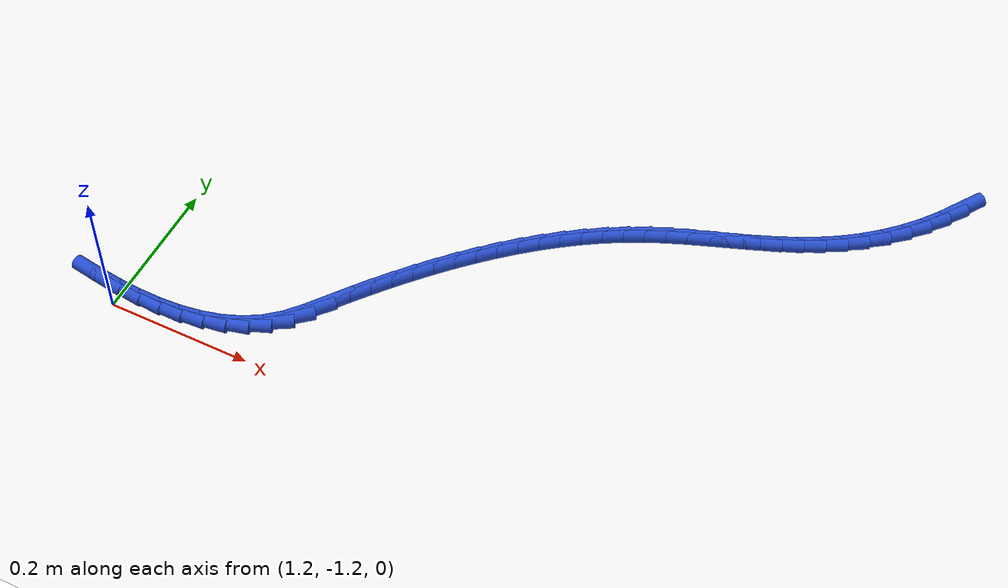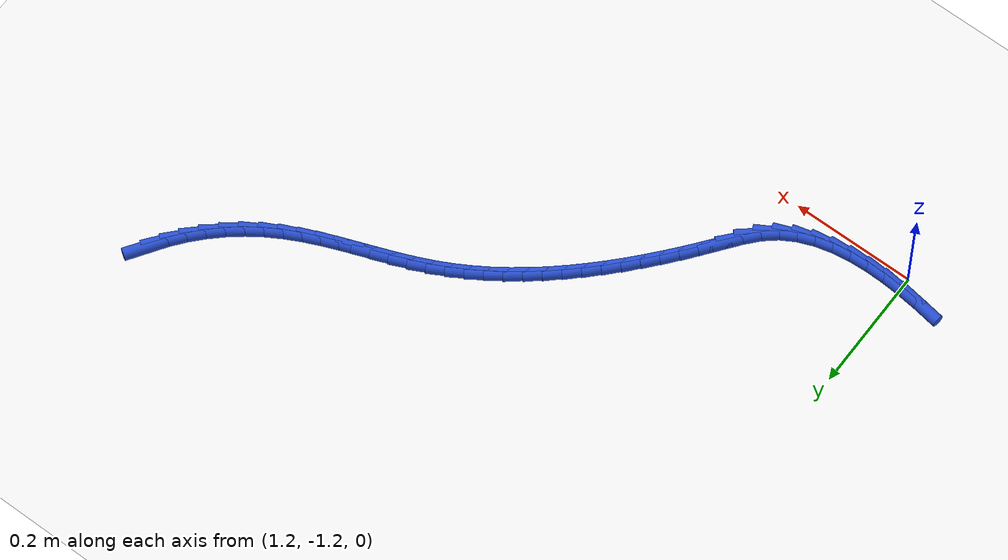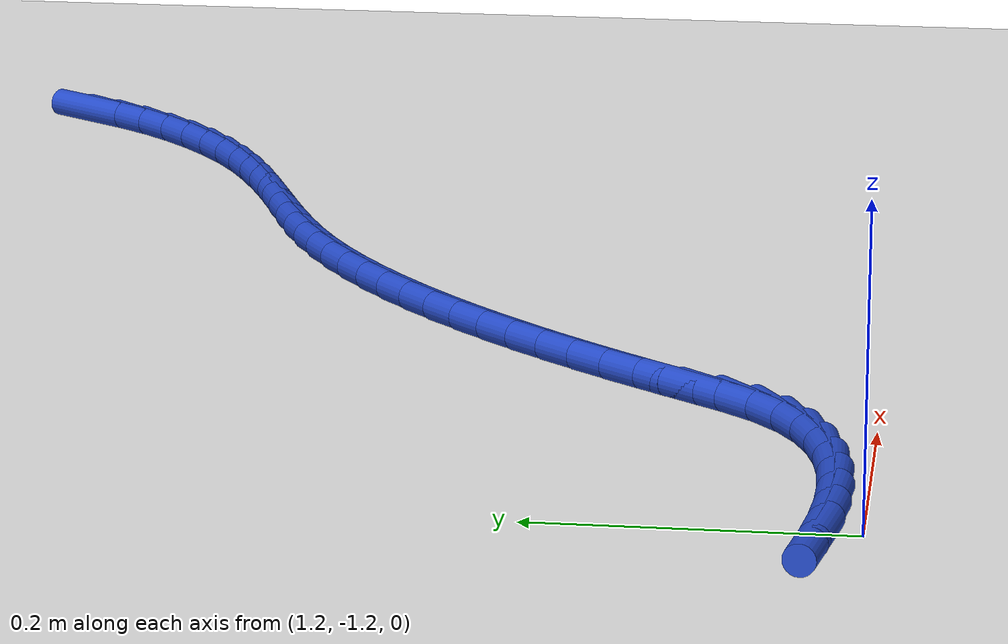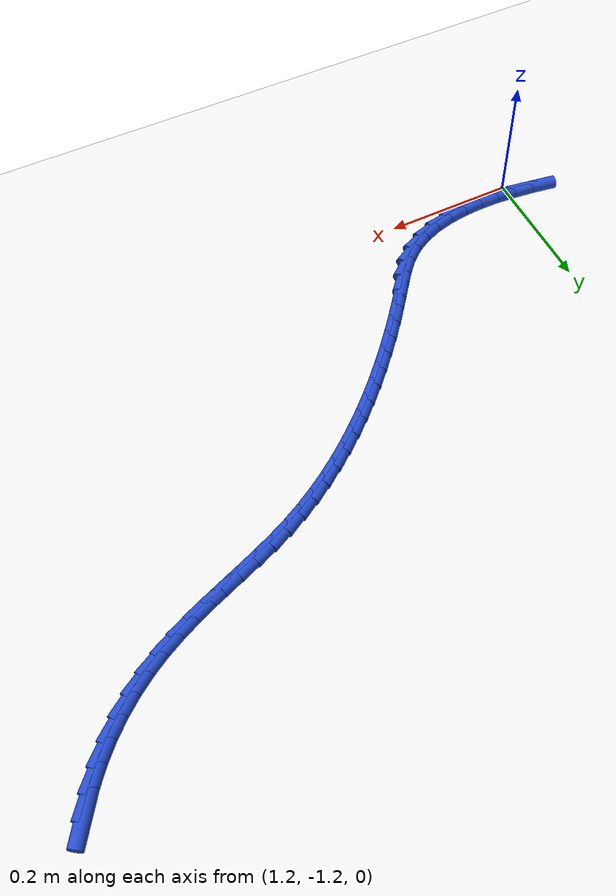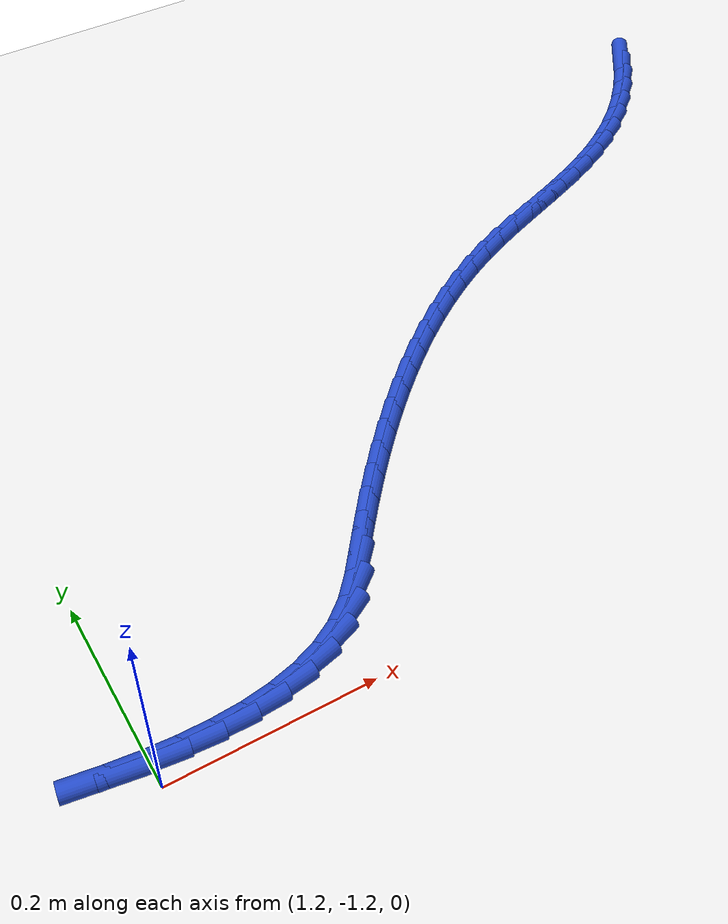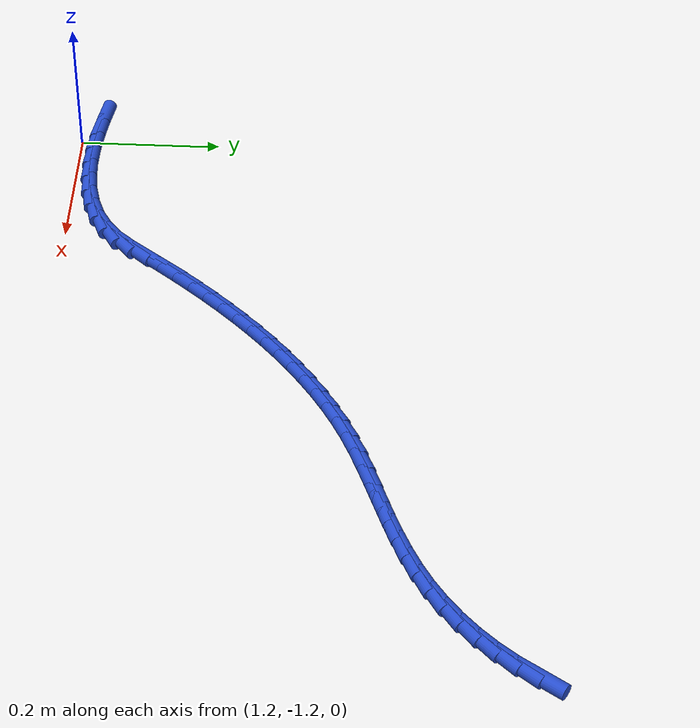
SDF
<sdf version="1.6">
 <world name="default">
  <model name="ground_plane">
   <static>1</static>
   <link name="link">
    <collision name="collision">
     <geometry><plane><normal>0 0 1</normal><size>100 100</size></plane></geometry>
     <surface><friction><ode><mu>100</mu><mu2>50</mu2></ode></friction></surface>
    </collision>
    <visual name="visual">
     <cast_shadows>0</cast_shadows>
     <geometry><plane><normal>0 0 1</normal><size>100 100</size></plane></geometry>
     <material>
      <script><uri>file://media/materials/scripts/gazebo.material</uri><name>Gazebo/WhiteGlow</name></script>
     </material>
    </visual>
   </link>
  </model>
  <model name="line">
   <link name="link_144">
    <pose>2.124508899725825 -0.5680824935011975 0.01 0 1.57 0.9851370315072407</pose>
    <collision name="collision">
     <geometry><cylinder><radius>0.01</radius><length>0.08</length></cylinder></geometry>
    </collision>
    <visual name="visual">
     <material>
      <script><name>Gazebo/Blue</name><uri>file://media/materials/scripts/gazebo.material</uri></script>
     </material>
     <geometry><cylinder><radius>0.01</radius><length>0.08</length></cylinder></geometry>
    </visual>
   </link>
   <link name="link_145">
    <pose>2.108668145786676 -0.5919646894215107 0.01 0 1.57 0.9047653772155894</pose>
    <collision name="collision">
     <geometry><cylinder><radius>0.01</radius><length>0.08</length></cylinder></geometry>
    </collision>
    <visual name="visual">
     <material>
      <script><name>Gazebo/Blue</name><uri>file://media/materials/scripts/gazebo.material</uri></script>
     </material>
     <geometry><cylinder><radius>0.01</radius><length>0.08</length></cylinder></geometry>
    </visual>
   </link>
   <link name="link_146">
    <pose>2.0908029062440012 -0.6146993788718632 0.01 0 1.57 0.8279205633235612</pose>
    <collision name="collision">
     <geometry><cylinder><radius>0.01</radius><length>0.08</length></cylinder></geometry>
    </collision>
    <visual name="visual">
     <material>
      <script><name>Gazebo/Blue</name><uri>file://media/materials/scripts/gazebo.material</uri></script>
     </material>
     <geometry><cylinder><radius>0.01</radius><length>0.08</length></cylinder></geometry>
    </visual>
   </link>
   <link name="link_147">
    <pose>2.0711270530969412 -0.6361239759263299 0.01 0 1.57 0.7533729343449498</pose>
    <collision name="collision">
     <geometry><cylinder><radius>0.01</radius><length>0.08</length></cylinder></geometry>
    </collision>
    <visual name="visual">
     <material>
      <script><name>Gazebo/Blue</name><uri>file://media/materials/scripts/gazebo.material</uri></script>
     </material>
     <geometry><cylinder><radius>0.01</radius><length>0.08</length></cylinder></geometry>
    </visual>
   </link>
   <link name="link_148">
    <pose>2.0498544583446345 -0.6560758946589864 0.01 0 1.57 0.6798947225078926</pose>
    <collision name="collision">
     <geometry><cylinder><radius>0.01</radius><length>0.08</length></cylinder></geometry>
    </collision>
    <visual name="visual">
     <material>
      <script><name>Gazebo/Blue</name><uri>file://media/materials/scripts/gazebo.material</uri></script>
     </material>
     <geometry><cylinder><radius>0.01</radius><length>0.08</length></cylinder></geometry>
    </visual>
   </link>
   <link name="link_149">
    <pose>2.0271989939862216 -0.6743925491439088 0.01 0 1.57 0.6062521403244878</pose>
    <collision name="collision">
     <geometry><cylinder><radius>0.01</radius><length>0.08</length></cylinder></geometry>
    </collision>
    <visual name="visual">
     <material>
      <script><name>Gazebo/Blue</name><uri>file://media/materials/scripts/gazebo.material</uri></script>
     </material>
     <geometry><cylinder><radius>0.01</radius><length>0.08</length></cylinder></geometry>
    </visual>
   </link>
   <link name="link_150">
    <pose>2.003374532020841 -0.6909113534551728 0.01 0 1.57 0.532793385031627</pose>
    <collision name="collision">
     <geometry><cylinder><radius>0.01</radius><length>0.08</length></cylinder></geometry>
    </collision>
    <visual name="visual">
     <material>
      <script><name>Gazebo/Blue</name><uri>file://media/materials/scripts/gazebo.material</uri></script>
     </material>
     <geometry><cylinder><radius>0.01</radius><length>0.08</length></cylinder></geometry>
    </visual>
   </link>
   <link name="link_151">
    <pose>1.9785915926286304 -0.7055252462401531 0.01 0 1.57 0.4689941015839314</pose>
    <collision name="collision">
     <geometry><cylinder><radius>0.01</radius><length>0.08</length></cylinder></geometry>
    </collision>
    <visual name="visual">
     <material>
      <script><name>Gazebo/Blue</name><uri>file://media/materials/scripts/gazebo.material</uri></script>
     </material>
     <geometry><cylinder><radius>0.01</radius><length>0.08</length></cylinder></geometry>
    </visual>
   </link>
   <link name="link_152">
    <pose>1.9530398592361438 -0.7184723374846078 0.01 0 1.57 0.4192963553525784</pose>
    <collision name="collision">
     <geometry><cylinder><radius>0.01</radius><length>0.08</length></cylinder></geometry>
    </collision>
    <visual name="visual">
     <material>
      <script><name>Gazebo/Blue</name><uri>file://media/materials/scripts/gazebo.material</uri></script>
     </material>
     <geometry><cylinder><radius>0.01</radius><length>0.08</length></cylinder></geometry>
    </visual>
   </link>
   <link name="link_153">
    <pose>1.9269010206735355 -0.7301231716981672 0.01 0 1.57 0.3839987366928588</pose>
    <collision name="collision">
     <geometry><cylinder><radius>0.01</radius><length>0.08</length></cylinder></geometry>
    </collision>
    <visual name="visual">
     <material>
      <script><name>Gazebo/Blue</name><uri>file://media/materials/scripts/gazebo.material</uri></script>
     </material>
     <geometry><cylinder><radius>0.01</radius><length>0.08</length></cylinder></geometry>
    </visual>
   </link>
   <link name="link_154">
    <pose>1.9003567493396964 -0.7408485655826355 0.01 0 1.57 0.3631116952908933</pose>
    <collision name="collision">
     <geometry><cylinder><radius>0.01</radius><length>0.08</length></cylinder></geometry>
    </collision>
    <visual name="visual">
     <material>
      <script><name>Gazebo/Blue</name><uri>file://media/materials/scripts/gazebo.material</uri></script>
     </material>
     <geometry><cylinder><radius>0.01</radius><length>0.08</length></cylinder></geometry>
    </visual>
   </link>
   <link name="link_155">
    <pose>1.8735887176335169 -0.7510193358398176 0.01 0 1.57 0.3565834362175257</pose>
    <collision name="collision">
     <geometry><cylinder><radius>0.01</radius><length>0.08</length></cylinder></geometry>
    </collision>
    <visual name="visual">
     <material>
      <script><name>Gazebo/Blue</name><uri>file://media/materials/scripts/gazebo.material</uri></script>
     </material>
     <geometry><cylinder><radius>0.01</radius><length>0.08</length></cylinder></geometry>
    </visual>
   </link>
   <link name="link_156">
    <pose>1.8467785979538878 -0.761006299171518 0.01 0 1.57 0.36442972092847686</pose>
    <collision name="collision">
     <geometry><cylinder><radius>0.01</radius><length>0.08</length></cylinder></geometry>
    </collision>
    <visual name="visual">
     <material>
      <script><name>Gazebo/Blue</name><uri>file://media/materials/scripts/gazebo.material</uri></script>
     </material>
     <geometry><cylinder><radius>0.01</radius><length>0.08</length></cylinder></geometry>
    </visual>
   </link>
   <link name="link_157">
    <pose>1.8201080626996997 -0.7711802722795413 0.01 0 1.57 0.3867750837548463</pose>
    <collision name="collision">
     <geometry><cylinder><radius>0.01</radius><length>0.08</length></cylinder></geometry>
    </collision>
    <visual name="visual">
     <material>
      <script><name>Gazebo/Blue</name><uri>file://media/materials/scripts/gazebo.material</uri></script>
     </material>
     <geometry><cylinder><radius>0.01</radius><length>0.08</length></cylinder></geometry>
    </visual>
   </link>
   <link name="link_158">
    <pose>1.7937587842698428 -0.7819120718656923 0.01 0 1.57 0.42380529924486554</pose>
    <collision name="collision">
     <geometry><cylinder><radius>0.01</radius><length>0.08</length></cylinder></geometry>
    </collision>
    <visual name="visual">
     <material>
      <script><name>Gazebo/Blue</name><uri>file://media/materials/scripts/gazebo.material</uri></script>
     </material>
     <geometry><cylinder><radius>0.01</radius><length>0.08</length></cylinder></geometry>
    </visual>
   </link>
   <link name="link_159">
    <pose>1.7679124335396175 -0.7935725112691795 0.01 0 1.57 0.4724409163797906</pose>
    <collision name="collision">
     <geometry><cylinder><radius>0.01</radius><length>0.08</length></cylinder></geometry>
    </collision>
    <visual name="visual">
     <material>
      <script><name>Gazebo/Blue</name><uri>file://media/materials/scripts/gazebo.material</uri></script>
     </material>
     <geometry><cylinder><radius>0.01</radius><length>0.08</length></cylinder></geometry>
    </visual>
   </link>
   <link name="link_160">
    <pose>1.7427134419149362 -0.8064502155371035 0.01 0 1.57 0.5211316696237953</pose>
    <collision name="collision">
     <geometry><cylinder><radius>0.01</radius><length>0.08</length></cylinder></geometry>
    </collision>
    <visual name="visual">
     <material>
      <script><name>Gazebo/Blue</name><uri>file://media/materials/scripts/gazebo.material</uri></script>
     </material>
     <geometry><cylinder><radius>0.01</radius><length>0.08</length></cylinder></geometry>
    </visual>
   </link>
   <link name="link_161">
    <pose>1.7181723856046178 -0.8205383884815307 0.01 0 1.57 0.5671680925409253</pose>
    <collision name="collision">
     <geometry><cylinder><radius>0.01</radius><length>0.08</length></cylinder></geometry>
    </collision>
    <visual name="visual">
     <material>
      <script><name>Gazebo/Blue</name><uri>file://media/materials/scripts/gazebo.material</uri></script>
     </material>
     <geometry><cylinder><radius>0.01</radius><length>0.08</length></cylinder></geometry>
    </visual>
   </link>
   <link name="link_162">
    <pose>1.6942697768142179 -0.8357638820270551 0.01 0 1.57 0.6104697178454417</pose>
    <collision name="collision">
     <geometry><cylinder><radius>0.01</radius><length>0.08</length></cylinder></geometry>
    </collision>
    <visual name="visual">
     <material>
      <script><name>Gazebo/Blue</name><uri>file://media/materials/scripts/gazebo.material</uri></script>
     </material>
     <geometry><cylinder><radius>0.01</radius><length>0.08</length></cylinder></geometry>
    </visual>
   </link>
   <link name="link_163">
    <pose>1.6709861277492888 -0.8520535480982708 0.01 0 1.57 0.6510072088173618</pose>
    <collision name="collision">
     <geometry><cylinder><radius>0.01</radius><length>0.08</length></cylinder></geometry>
    </collision>
    <visual name="visual">
     <material>
      <script><name>Gazebo/Blue</name><uri>file://media/materials/scripts/gazebo.material</uri></script>
     </material>
     <geometry><cylinder><radius>0.01</radius><length>0.08</length></cylinder></geometry>
    </visual>
   </link>
   <link name="link_164">
    <pose>1.6483019506153862 -0.8693342386197724 0.01 0 1.57 0.6887926547073</pose>
    <collision name="collision">
     <geometry><cylinder><radius>0.01</radius><length>0.08</length></cylinder></geometry>
    </collision>
    <visual name="visual">
     <material>
      <script><name>Gazebo/Blue</name><uri>file://media/materials/scripts/gazebo.material</uri></script>
     </material>
     <geometry><cylinder><radius>0.01</radius><length>0.08</length></cylinder></geometry>
    </visual>
   </link>
   <link name="link_165">
    <pose>1.6261977576180622 -0.8875328055161534 0.01 0 1.57 0.7238699428039904</pose>
    <collision name="collision">
     <geometry><cylinder><radius>0.01</radius><length>0.08</length></cylinder></geometry>
    </collision>
    <visual name="visual">
     <material>
      <script><name>Gazebo/Blue</name><uri>file://media/materials/scripts/gazebo.material</uri></script>
     </material>
     <geometry><cylinder><radius>0.01</radius><length>0.08</length></cylinder></geometry>
    </visual>
   </link>
   <link name="link_166">
    <pose>1.604654060962872 -0.9065761007120084 0.01 0 1.57 0.7563058448182598</pose>
    <collision name="collision">
     <geometry><cylinder><radius>0.01</radius><length>0.08</length></cylinder></geometry>
    </collision>
    <visual name="visual">
     <material>
      <script><name>Gazebo/Blue</name><uri>file://media/materials/scripts/gazebo.material</uri></script>
     </material>
     <geometry><cylinder><radius>0.01</radius><length>0.08</length></cylinder></geometry>
    </visual>
   </link>
   <link name="link_167">
    <pose>1.5836513728553694 -0.926390976131932 0.01 0 1.57 0.7861821765553042</pose>
    <collision name="collision">
     <geometry><cylinder><radius>0.01</radius><length>0.08</length></cylinder></geometry>
    </collision>
    <visual name="visual">
     <material>
      <script><name>Gazebo/Blue</name><uri>file://media/materials/scripts/gazebo.material</uri></script>
     </material>
     <geometry><cylinder><radius>0.01</radius><length>0.08</length></cylinder></geometry>
    </visual>
   </link>
   <link name="link_168">
    <pose>1.563170205501108 -0.9469042837005175 0.01 0 1.57 0.8135891697807469</pose>
    <collision name="collision">
     <geometry><cylinder><radius>0.01</radius><length>0.08</length></cylinder></geometry>
    </collision>
    <visual name="visual">
     <material>
      <script><name>Gazebo/Blue</name><uri>file://media/materials/scripts/gazebo.material</uri></script>
     </material>
     <geometry><cylinder><radius>0.01</radius><length>0.08</length></cylinder></geometry>
    </visual>
   </link>
   <link name="link_169">
    <pose>1.5431910711056422 -0.9680428753423598 0.01 0 1.57 0.8386200409446154</pose>
    <collision name="collision">
     <geometry><cylinder><radius>0.01</radius><length>0.08</length></cylinder></geometry>
    </collision>
    <visual name="visual">
     <material>
      <script><name>Gazebo/Blue</name><uri>file://media/materials/scripts/gazebo.material</uri></script>
     </material>
     <geometry><cylinder><radius>0.01</radius><length>0.08</length></cylinder></geometry>
    </visual>
   </link>
   <link name="link_170">
    <pose>1.5236944818745255 -0.9897336029820526 0.01 0 1.57 0.8613666460338486</pose>
    <collision name="collision">
     <geometry><cylinder><radius>0.01</radius><length>0.08</length></cylinder></geometry>
    </collision>
    <visual name="visual">
     <material>
      <script><name>Gazebo/Blue</name><uri>file://media/materials/scripts/gazebo.material</uri></script>
     </material>
     <geometry><cylinder><radius>0.01</radius><length>0.08</length></cylinder></geometry>
    </visual>
   </link>
   <link name="link_171">
    <pose>1.5046609500133123 -1.0119033185441901 0.01 0 1.57 0.8819160611468101</pose>
    <collision name="collision">
     <geometry><cylinder><radius>0.01</radius><length>0.08</length></cylinder></geometry>
    </collision>
    <visual name="visual">
     <material>
      <script><name>Gazebo/Blue</name><uri>file://media/materials/scripts/gazebo.material</uri></script>
     </material>
     <geometry><cylinder><radius>0.01</radius><length>0.08</length></cylinder></geometry>
    </visual>
   </link>
   <link name="link_172">
    <pose>1.486070987727556 -1.034478873953367 0.01 0 1.57 0.9003479104283613</pose>
    <collision name="collision">
     <geometry><cylinder><radius>0.01</radius><length>0.08</length></cylinder></geometry>
    </collision>
    <visual name="visual">
     <material>
      <script><name>Gazebo/Blue</name><uri>file://media/materials/scripts/gazebo.material</uri></script>
     </material>
     <geometry><cylinder><radius>0.01</radius><length>0.08</length></cylinder></geometry>
    </visual>
   </link>
   <link name="link_173">
    <pose>1.4679051072228109 -1.057387121134177 0.01 0 1.57 0.9167322646533754</pose>
    <collision name="collision">
     <geometry><cylinder><radius>0.01</radius><length>0.08</length></cylinder></geometry>
    </collision>
    <visual name="visual">
     <material>
      <script><name>Gazebo/Blue</name><uri>file://media/materials/scripts/gazebo.material</uri></script>
     </material>
     <geometry><cylinder><radius>0.01</radius><length>0.08</length></cylinder></geometry>
    </visual>
   </link>
   <link name="link_174">
    <pose>1.4501438207046309 -1.0805549120112143 0.01 0 1.57 0.9195971540964153</pose>
    <collision name="collision">
     <geometry><cylinder><radius>0.01</radius><length>0.08</length></cylinder></geometry>
    </collision>
    <visual name="visual">
     <material>
      <script><name>Gazebo/Blue</name><uri>file://media/materials/scripts/gazebo.material</uri></script>
     </material>
     <geometry><cylinder><radius>0.01</radius><length>0.08</length></cylinder></geometry>
    </visual>
   </link>
   <link name="link_175">
    <pose>1.4325550790156971 -1.1036342724626091 0.01 0 1.57 0.8533619447222993</pose>
    <collision name="collision">
     <geometry><cylinder><radius>0.01</radius><length>0.08</length></cylinder></geometry>
    </collision>
    <visual name="visual">
     <material>
      <script><name>Gazebo/Blue</name><uri>file://media/materials/scripts/gazebo.material</uri></script>
     </material>
     <geometry><cylinder><radius>0.01</radius><length>0.08</length></cylinder></geometry>
    </visual>
   </link>
   <link name="link_176">
    <pose>1.413916002960035 -1.124996158756465 0.01 0 1.57 0.701745331134811</pose>
    <collision name="collision">
     <geometry><cylinder><radius>0.01</radius><length>0.08</length></cylinder></geometry>
    </collision>
    <visual name="visual">
     <material>
      <script><name>Gazebo/Blue</name><uri>file://media/materials/scripts/gazebo.material</uri></script>
     </material>
     <geometry><cylinder><radius>0.01</radius><length>0.08</length></cylinder></geometry>
    </visual>
   </link>
   <link name="link_177">
    <pose>1.3928490613906435 -1.1428035458487704 0.01 0 1.57 0.529217641748181</pose>
    <collision name="collision">
     <geometry><cylinder><radius>0.01</radius><length>0.08</length></cylinder></geometry>
    </collision>
    <visual name="visual">
     <material>
      <script><name>Gazebo/Blue</name><uri>file://media/materials/scripts/gazebo.material</uri></script>
     </material>
     <geometry><cylinder><radius>0.01</radius><length>0.08</length></cylinder></geometry>
    </visual>
   </link>
   <link name="link_178">
    <pose>1.3691490919572964 -1.1566648652787217 0.01 0 1.57 0.3771596546458779</pose>
    <collision name="collision">
     <geometry><cylinder><radius>0.01</radius><length>0.08</length></cylinder></geometry>
    </collision>
    <visual name="visual">
     <material>
      <script><name>Gazebo/Blue</name><uri>file://media/materials/scripts/gazebo.material</uri></script>
     </material>
     <geometry><cylinder><radius>0.01</radius><length>0.08</length></cylinder></geometry>
    </visual>
   </link>
   <link name="link_179">
    <pose>1.3432178409890947 -1.1669368296249087 0.01 0 1.57 0.248593783584787</pose>
    <collision name="collision">
     <geometry><cylinder><radius>0.01</radius><length>0.08</length></cylinder></geometry>
    </collision>
    <visual name="visual">
     <material>
      <script><name>Gazebo/Blue</name><uri>file://media/materials/scripts/gazebo.material</uri></script>
     </material>
     <geometry><cylinder><radius>0.01</radius><length>0.08</length></cylinder></geometry>
    </visual>
   </link>
   <link name="link_180">
    <pose>1.3154621682874283 -1.1739824560624614 0.01 0 1.57 0.14239085393636816</pose>
    <collision name="collision">
     <geometry><cylinder><radius>0.01</radius><length>0.08</length></cylinder></geometry>
    </collision>
    <visual name="visual">
     <material>
      <script><name>Gazebo/Blue</name><uri>file://media/materials/scripts/gazebo.material</uri></script>
     </material>
     <geometry><cylinder><radius>0.01</radius><length>0.08</length></cylinder></geometry>
    </visual>
   </link>
   <link name="link_181">
    <pose>1.2862889336536876 -1.1781647617665088 0.01 0 1.57 0.055667501691149465</pose>
    <collision name="collision">
     <geometry><cylinder><radius>0.01</radius><length>0.08</length></cylinder></geometry>
    </collision>
    <visual name="visual">
     <material>
      <script><name>Gazebo/Blue</name><uri>file://media/materials/scripts/gazebo.material</uri></script>
     </material>
     <geometry><cylinder><radius>0.01</radius><length>0.08</length></cylinder></geometry>
    </visual>
   </link>
   <link name="link_182">
    <pose>1.2561049968892617 -1.1798467639121804 0.01 0 1.57 -0.014786745526537692</pose>
    <collision name="collision">
     <geometry><cylinder><radius>0.01</radius><length>0.08</length></cylinder></geometry>
    </collision>
    <visual name="visual">
     <material>
      <script><name>Gazebo/Blue</name><uri>file://media/materials/scripts/gazebo.material</uri></script>
     </material>
     <geometry><cylinder><radius>0.01</radius><length>0.08</length></cylinder></geometry>
    </visual>
   </link>
   <link name="link_183">
    <pose>1.2253172177955403 -1.179391479674605 0.01 0 1.57 -0.07183264386928316</pose>
    <collision name="collision">
     <geometry><cylinder><radius>0.01</radius><length>0.08</length></cylinder></geometry>
    </collision>
    <visual name="visual">
     <material>
      <script><name>Gazebo/Blue</name><uri>file://media/materials/scripts/gazebo.material</uri></script>
     </material>
     <geometry><cylinder><radius>0.01</radius><length>0.08</length></cylinder></geometry>
    </visual>
   </link>
   <link name="link_184">
    <pose>1.1943324561739141 -1.1771619262289135 0.01 0 1.57 -0.11775710234143633</pose>
    <collision name="collision">
     <geometry><cylinder><radius>0.01</radius><length>0.08</length></cylinder></geometry>
    </collision>
    <visual name="visual">
     <material>
      <script><name>Gazebo/Blue</name><uri>file://media/materials/scripts/gazebo.material</uri></script>
     </material>
     <geometry><cylinder><radius>0.01</radius><length>0.08</length></cylinder></geometry>
    </visual>
   </link>
   <link name="link_185">
    <pose>1.1635575718257722 -1.1735211207502347 0.01 0 1.57 -0.15424667513396223</pose>
    <collision name="collision">
     <geometry><cylinder><radius>0.01</radius><length>0.08</length></cylinder></geometry>
    </collision>
    <visual name="visual">
     <material>
      <script><name>Gazebo/Blue</name><uri>file://media/materials/scripts/gazebo.material</uri></script>
     </material>
     <geometry><cylinder><radius>0.01</radius><length>0.08</length></cylinder></geometry>
    </visual>
   </link>
  </model>
 </world>
</sdf>
